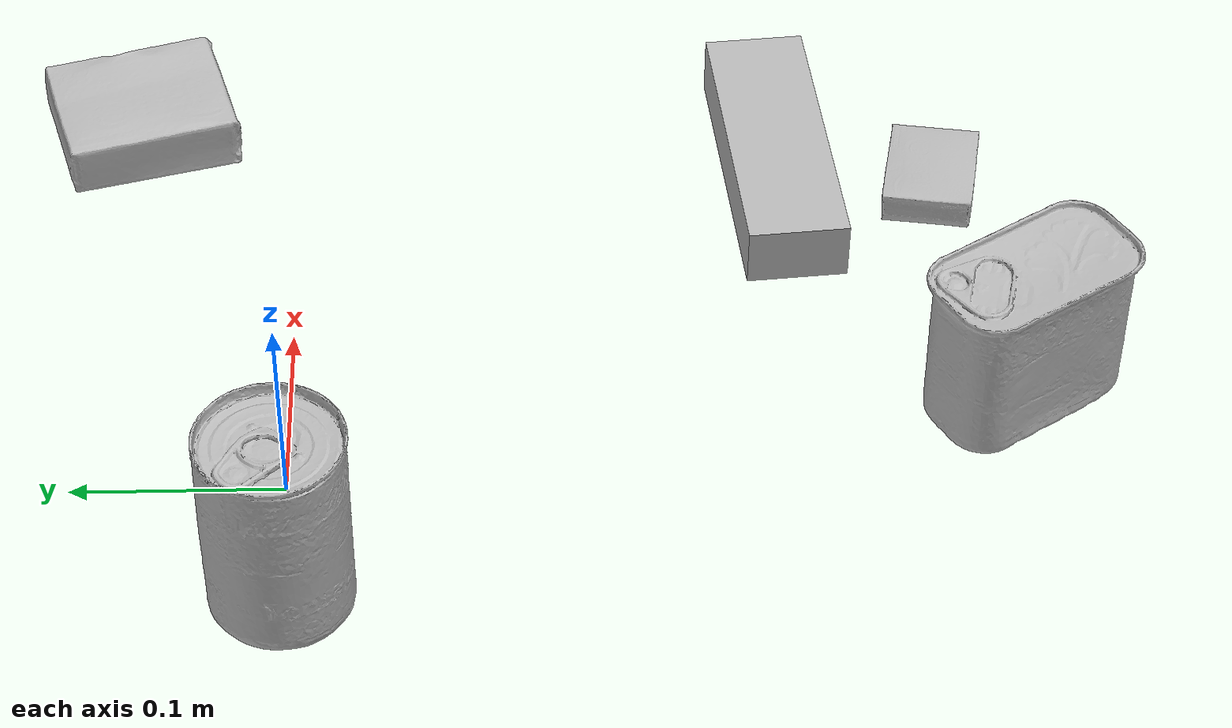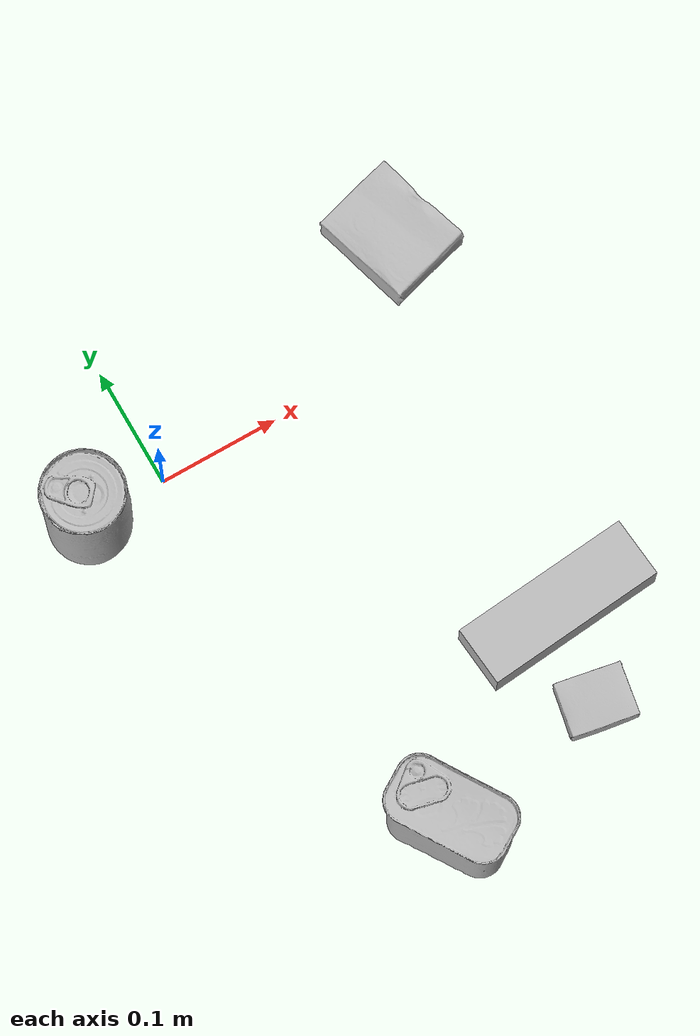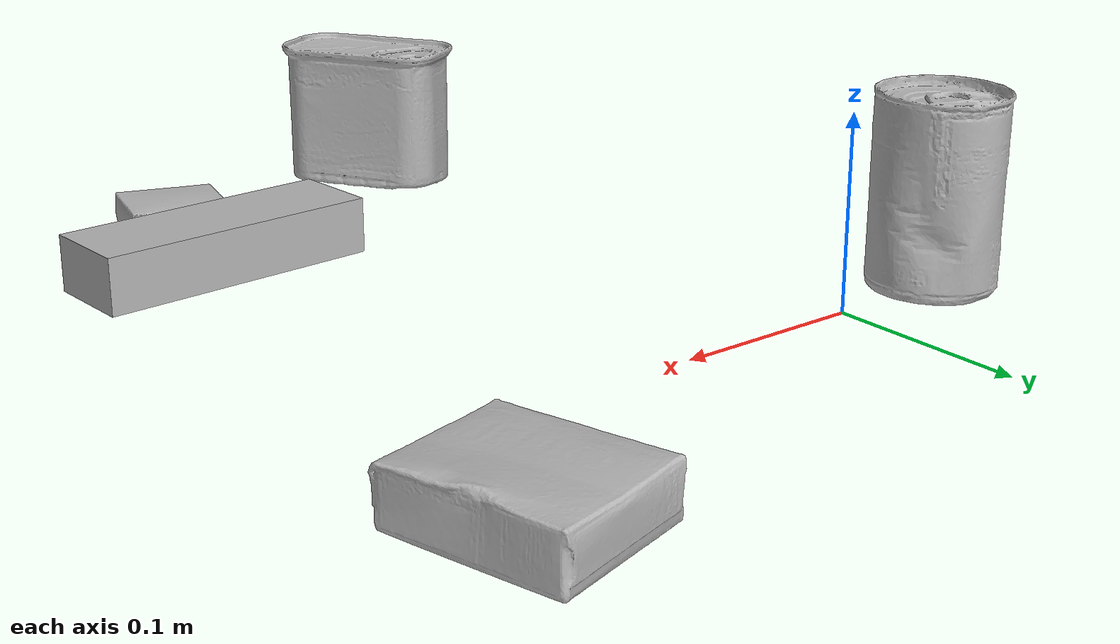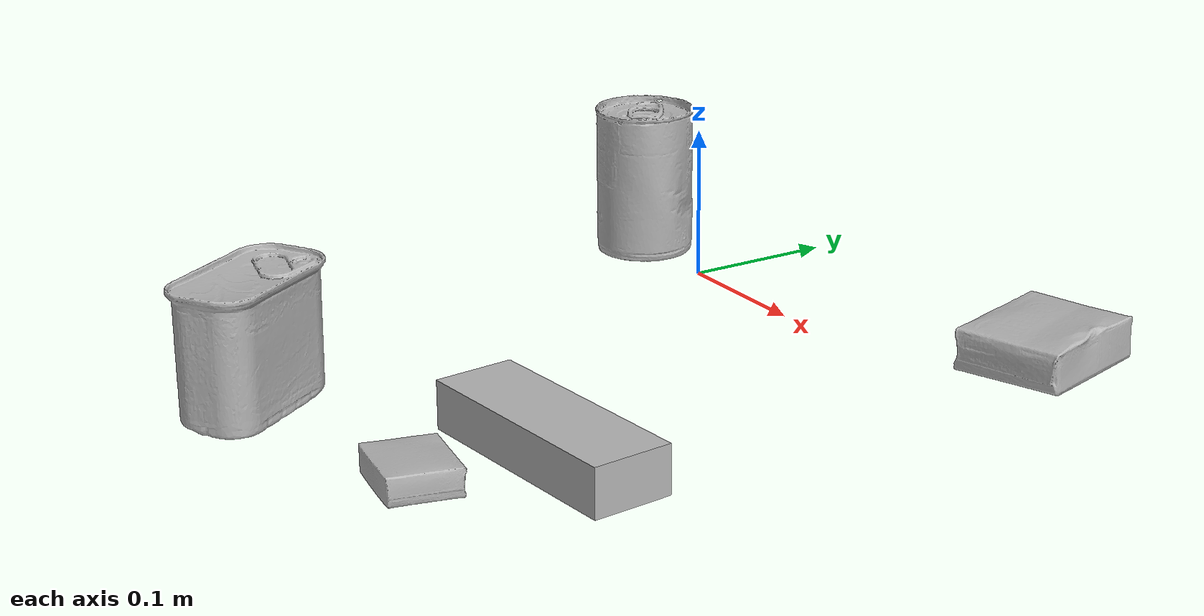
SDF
<sdf version="1.4">
  <world name="default">
    <light name="light1" type="point">
      <pose>0 0 1 0 0 0</pose>
      <diffuse>3 3 3 1</diffuse>
      <specular>3 3 3 1</specular>
    </light>
    <light name="light2" type="point">
      <pose>0 0.5 2 0 0 0</pose>
      <diffuse>1 1 1 1</diffuse>
      <specular>1 1 1 1</specular>
    </light>
    <light name="light3" type="point">
      <pose>0 0.5 2 0 0 0</pose>
      <diffuse>3 3 3 1</diffuse>
      <specular>3 3 3 1</specular>
    </light>
    <scene>
      <ambient>0.7 0.7 0.7</ambient>
    </scene>
    <model name="box1">
      <link name="link_box1">
        <collision name="default">
          <geometry>
            <mesh>
              <uri>model://pudding_box/collision_meshes/collision.obj</uri>
              <scale>0.5 0.5 0.5</scale>
            </mesh>
          </geometry>
          <surface>
            <friction>
              <ode>
                <mu>0.5</mu>
                <mu2>0.5</mu2>
              </ode>
            </friction>
          <contact>
        <ode>
            <max_vel>0</max_vel>
            <min_depth>0.0001</min_depth>
            <kp>1e8</kp>
        </ode>
    </contact></surface>
        </collision>
        <visual name="default">
          <geometry>
            <mesh>
              <uri>model://pudding_box/visual_meshes/visual.dae</uri>
              <scale>0.5 0.5 0.5</scale>
            </mesh>
          </geometry>
        </visual>
        <inertial>
          <mass>0.040720973163843155</mass>
          <pose>0.00024474109522998333 0.0004033942532259971 -0.0002594413817860186 0.005213101818388509 -0.006603799159636292 0.020079815843731863</pose>
          <inertia>
            <ixx>1.1508242e-05</ixx>
            <iyy>7.742825e-06</iyy>
            <izz>1.6994923e-05</izz>
            <ixy>0</ixy>
            <ixz>0</ixz>
            <iyz>0</iyz>
          </inertia>
        </inertial>
      </link>
      <pose>0.20030753314495087 -0.31833088397979736 0.009862902574241161 0.02234850295023329 -0.01139172758926663 -1.7635505157840197</pose>
    </model>
    <model name="box2">
      <link name="link_box2">
        <collision name="default">
          <geometry>
            <mesh>
              <uri>model://jenga/collision_meshes/collision.obj</uri>
              <scale>1.0 1.0 1.0</scale>
            </mesh>
          </geometry>
          <surface>
            <friction>
              <ode>
                <mu>0.5</mu>
                <mu2>0.5</mu2>
              </ode>
            </friction>
          <contact>
        <ode>
            <max_vel>0</max_vel>
            <min_depth>0.0001</min_depth>
            <kp>1e8</kp>
        </ode>
    </contact></surface>
        </collision>
        <visual name="default">
          <geometry>
            <mesh>
              <uri>model://jenga/visual_meshes/visual.dae</uri>
              <scale>1.0 1.0 1.0</scale>
            </mesh>
          </geometry>
        </visual>
        <inertial>
          <mass>0.2260044664144516</mass>
          <pose>-2.502855807051674e-07 -0.00010250010382151231 -4.0923401684267446e-05 0.0 -7.34215461761844e-07 0.0</pose>
          <inertia>
            <ixx>6.254092e-05</ixx>
            <iyy>0.00042377558</iyy>
            <izz>0.00045241645</izz>
            <ixy>0</ixy>
            <ixz>0</ixz>
            <iyz>0</iyz>
          </inertia>
        </inertial>
      </link>
      <pose>0.21209637820720673 -0.24011516571044922 0.01499999687075615 2.325041663690861e-08 -1.6836112101937788e-09 0.08683596192985293</pose>
    </model>
    <model name="box3">
      <link name="link_box3">
        <collision name="default">
          <geometry>
            <mesh>
              <uri>model://gelatin_box/collision_meshes/collision.obj</uri>
              <scale>1.0 1.0 1.0</scale>
            </mesh>
          </geometry>
          <surface>
            <friction>
              <ode>
                <mu>0.5</mu>
                <mu2>0.5</mu2>
              </ode>
            </friction>
          <contact>
        <ode>
            <max_vel>0</max_vel>
            <min_depth>0.0001</min_depth>
            <kp>1e8</kp>
        </ode>
    </contact></surface>
        </collision>
        <visual name="default">
          <geometry>
            <mesh>
              <uri>model://gelatin_box/visual_meshes/visual.dae</uri>
              <scale>1.0 1.0 1.0</scale>
            </mesh>
          </geometry>
        </visual>
        <inertial>
          <mass>0.21249663829803467</mass>
          <pose>0.000431961816502735 0.00011156871914863586 -0.0003640321083366871 -0.0010503720865678746 -0.004755816824885886 0.016440563196489677</pose>
          <inertia>
            <ixx>0.00015000527</ixx>
            <iyy>0.000107147986</iyy>
            <izz>0.00022834145</izz>
            <ixy>0</ixy>
            <ixz>0</ixz>
            <iyz>0</iyz>
          </inertia>
        </inertial>
      </link>
      <pose>0.25231224298477173 0.08223538100719452 0.015168314799666405 0.00559746583719919 -0.007304573552197574 0.2702037130559726</pose>
    </model>
    <model name="can1">
      <link name="link_can1">
        <collision name="default">
          <geometry>
            <mesh>
              <uri>model://tomato_soup_can/collision_meshes/collision.obj</uri>
              <scale>1.0 1.0 1.0</scale>
            </mesh>
          </geometry>
          <surface>
            <friction>
              <ode>
                <mu>0.5</mu>
                <mu2>0.5</mu2>
              </ode>
            </friction>
          <contact>
        <ode>
            <max_vel>0</max_vel>
            <min_depth>0.0001</min_depth>
            <kp>1e8</kp>
        </ode>
    </contact></surface>
        </collision>
        <visual name="default">
          <geometry>
            <mesh>
              <uri>model://tomato_soup_can/visual_meshes/visual.dae</uri>
              <scale>1.0 1.0 1.0</scale>
            </mesh>
          </geometry>
        </visual>
        <inertial>
          <mass>0.23179346323013306</mass>
          <pose>0.00012652273289859295 0.00010805525380419567 -0.0017973976209759712 0.00702006934742656 0.00042299045868732465 -0.009902874376192201</pose>
          <inertia>
            <ixx>0.0002541419</ixx>
            <iyy>0.00025267305</iyy>
            <izz>0.00013171937</izz>
            <ixy>0</ixy>
            <ixz>0</ixz>
            <iyz>0</iyz>
          </inertia>
        </inertial>
      </link>
      <pose>-0.06560873985290527 -0.0009098698501475155 0.051274001598358154 -3.364700005587357e-07 -4.022460281952464e-07 -2.5626743335438045</pose>
    </model>
    <model name="can2">
      <link name="link_can2">
        <collision name="default">
          <geometry>
            <mesh>
              <uri>model://potted_meat_can/collision_meshes/collision.obj</uri>
              <scale>1.0 1.0 1.0</scale>
            </mesh>
          </geometry>
          <surface>
            <friction>
              <ode>
                <mu>0.5</mu>
                <mu2>0.5</mu2>
              </ode>
            </friction>
          <contact>
        <ode>
            <max_vel>0</max_vel>
            <min_depth>0.0001</min_depth>
            <kp>1e8</kp>
        </ode>
    </contact></surface>
        </collision>
        <visual name="default">
          <geometry>
            <mesh>
              <uri>model://potted_meat_can/visual_meshes/visual.dae</uri>
              <scale>1.0 1.0 1.0</scale>
            </mesh>
          </geometry>
        </visual>
        <inertial>
          <mass>0.3195023536682129</mass>
          <pose>0.00022888148669153452 -5.98910846747458e-05 -0.0006367437308654189 -0.028093352727545092 -0.0072326048209280834 0.015406269022640915</pose>
          <inertia>
            <ixx>0.00041100648</ixx>
            <iyy>0.0002497176</iyy>
            <izz>0.00029892896</izz>
            <ixy>0</ixy>
            <ixz>0</ixz>
            <iyz>0</iyz>
          </inertia>
        </inertial>
      </link>
      <pose>0.05442783609032631 -0.346026748418808 0.04212800785899162 -1.2826806170238368e-07 -4.3161815642896263e-08 -2.591635221760998</pose>
    </model>
  <physics type="ode">
      <max_contacts>50</max_contacts>
      <ode>
        <solver>
          <type>quick</type>
          <iters>75</iters>
        </solver>
        <constraints>
          <contact_max_correcting_vel>0</contact_max_correcting_vel>
          <contact_surface_layer>0</contact_surface_layer>
        </constraints>
      </ode>
    </physics></world>
</sdf>
